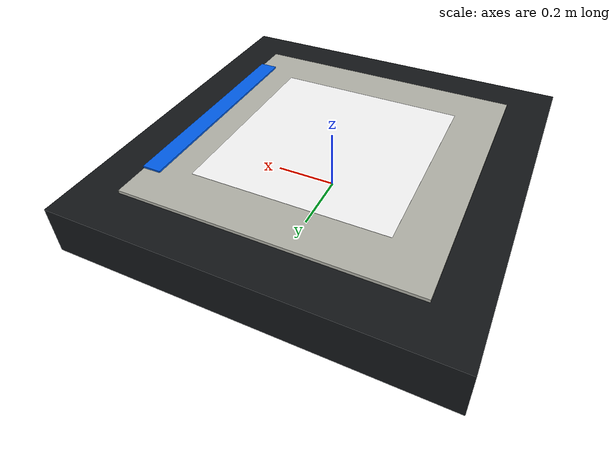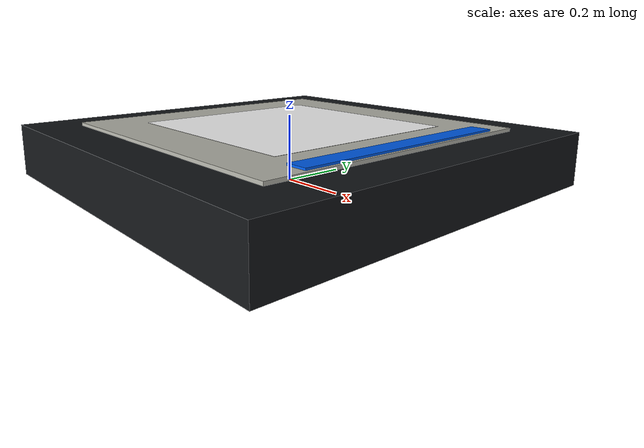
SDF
<?xml version="1.0" encoding="UTF-8"?>
<sdf version="1.9">
  <model name="dib_box_landing_pad">
    <static>true</static>
    <pose>0 0 0 0 0 0</pose>

    <link name="box_body">
      <collision name="box_collision">
        <pose>0 0 0.08 0 0 0</pose>
        <geometry>
          <box>
            <size>1.20 1.20 0.16</size>
          </box>
        </geometry>
      </collision>

      <visual name="box_base_visual">
        <pose>0 0 0.08 0 0 0</pose>
        <geometry>
          <box>
            <size>1.20 1.20 0.16</size>
          </box>
        </geometry>
        <material>
          <ambient>0.08 0.09 0.10 1</ambient>
          <diffuse>0.08 0.09 0.10 1</diffuse>
          <specular>0.25 0.25 0.25 1</specular>
        </material>
      </visual>

      <visual name="landing_surface_visual">
        <pose>0 0 0.164 0 0 0</pose>
        <geometry>
          <box>
            <size>0.92 0.92 0.012</size>
          </box>
        </geometry>
        <material>
          <ambient>0.72 0.72 0.68 1</ambient>
          <diffuse>0.72 0.72 0.68 1</diffuse>
          <specular>0.15 0.15 0.15 1</specular>
        </material>
      </visual>

      <visual name="marker_visual">
        <pose>0 0 0.172 0 0 0</pose>
        <geometry>
          <plane>
            <normal>0 0 1</normal>
            <size>0.625 0.625</size>
          </plane>
        </geometry>
        <material>
          <diffuse>1 1 1 1</diffuse>
          <specular>0.2 0.2 0.2 1</specular>
          <pbr>
            <metal>
              <albedo_map>model://fractal_aruco_marker/marker.png</albedo_map>
            </metal>
          </pbr>
        </material>
      </visual>

      <visual name="front_orientation_mark_visual">
        <pose>0.43 0 0.176 0 0 0</pose>
        <geometry>
          <box>
            <size>0.06 0.70 0.006</size>
          </box>
        </geometry>
        <material>
          <ambient>0.0 0.38 0.95 1</ambient>
          <diffuse>0.0 0.38 0.95 1</diffuse>
          <specular>0.1 0.1 0.1 1</specular>
        </material>
      </visual>
    </link>
  </model>
</sdf>
